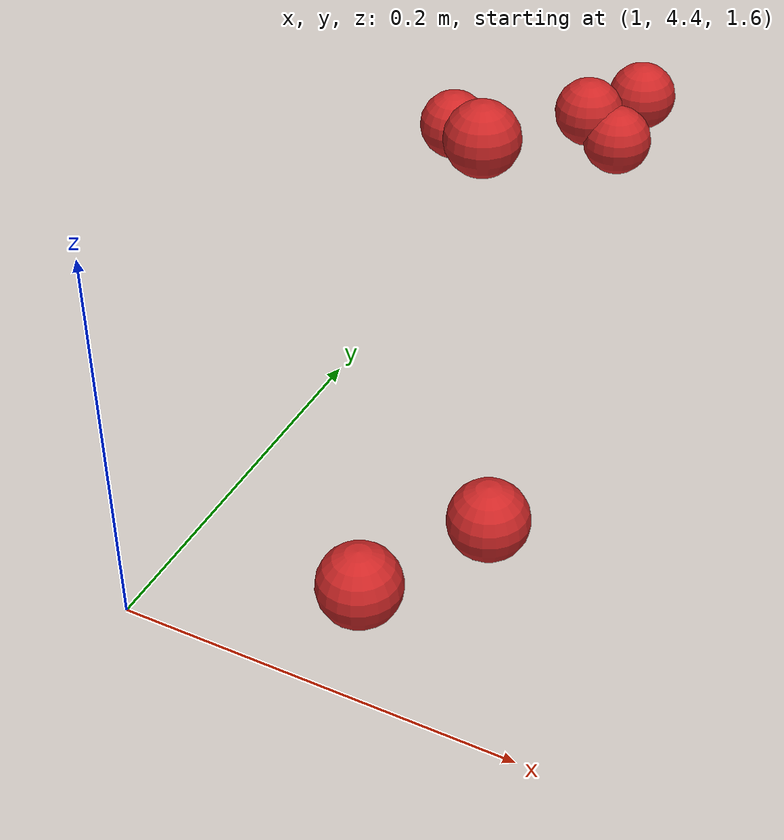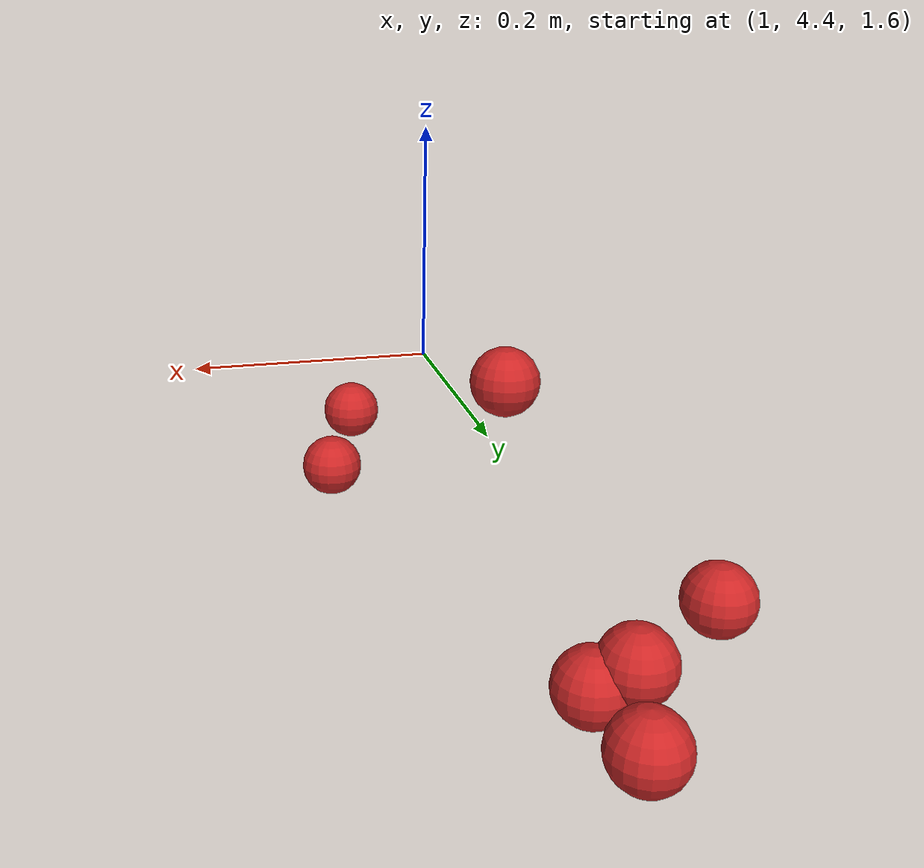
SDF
<sdf version="1.4">
 <model name="pergola">
  <link name="fruit_59">
   <pose>0.93965343294202 4.8539683423220845 1.5963617136771187 0 0 0</pose>
   <collision name="fruit_collision_59"><geometry><sphere><radius>0.022</radius></sphere></geometry></collision>
   <visual name="visual">
    <geometry><sphere><radius>0.022</radius></sphere></geometry>
    <material><script><name>Gazebo/Red</name></script></material>
   </visual>
   <inertial>
    <mass>0.05</mass>
    <inertia>
     <ixx>9.679999999999999e-06</ixx>
     <ixy>0.0</ixy>
     <ixz>0.0</ixz>
     <iyy>9.679999999999999e-06</iyy>
     <iyz>0.0</iyz>
     <izz>9.679999999999999e-06</izz>
    </inertia>
   </inertial>
   <sensor name="fruit_contact_59" type="contact">
    <plugin name="contact_plugin_59" filename="libcontact_plugin.so"/>
    <contact><collision>fruit_collision_59</collision><topic>fruit_contact_topic_59</topic></contact>
   </sensor>
  </link>
  <link name="fruit_111">
   <pose>1.0796516067157176 4.478020774260076 1.5828366507730647 0 0 0</pose>
   <collision name="fruit_collision_111"><geometry><sphere><radius>0.022</radius></sphere></geometry></collision>
   <visual name="visual">
    <geometry><sphere><radius>0.022</radius></sphere></geometry>
    <material><script><name>Gazebo/Red</name></script></material>
   </visual>
   <inertial>
    <mass>0.05</mass>
    <inertia>
     <ixx>9.679999999999999e-06</ixx>
     <ixy>0.0</ixy>
     <ixz>0.0</ixz>
     <iyy>9.679999999999999e-06</iyy>
     <iyz>0.0</iyz>
     <izz>9.679999999999999e-06</izz>
    </inertia>
   </inertial>
   <sensor name="fruit_contact_111" type="contact">
    <plugin name="contact_plugin_111" filename="libcontact_plugin.so"/>
    <contact><collision>fruit_collision_111</collision><topic>fruit_contact_topic_111</topic></contact>
   </sensor>
  </link>
  <link name="fruit_151">
   <pose>1.0250283172269645 4.720108020704341 1.6848999716293238 0 0 0</pose>
   <collision name="fruit_collision_151"><geometry><sphere><radius>0.022</radius></sphere></geometry></collision>
   <visual name="visual">
    <geometry><sphere><radius>0.022</radius></sphere></geometry>
    <material><script><name>Gazebo/Red</name></script></material>
   </visual>
   <inertial>
    <mass>0.05</mass>
    <inertia>
     <ixx>9.679999999999999e-06</ixx>
     <ixy>0.0</ixy>
     <ixz>0.0</ixz>
     <iyy>9.679999999999999e-06</iyy>
     <iyz>0.0</iyz>
     <izz>9.679999999999999e-06</izz>
    </inertia>
   </inertial>
   <sensor name="fruit_contact_151" type="contact">
    <plugin name="contact_plugin_151" filename="libcontact_plugin.so"/>
    <contact><collision>fruit_collision_151</collision><topic>fruit_contact_topic_151</topic></contact>
   </sensor>
  </link>
  <link name="fruit_197">
   <pose>1.0098710817007805 4.906567091879176 1.596323309345472 0 0 0</pose>
   <collision name="fruit_collision_197"><geometry><sphere><radius>0.022</radius></sphere></geometry></collision>
   <visual name="visual">
    <geometry><sphere><radius>0.022</radius></sphere></geometry>
    <material><script><name>Gazebo/Red</name></script></material>
   </visual>
   <inertial>
    <mass>0.05</mass>
    <inertia>
     <ixx>9.679999999999999e-06</ixx>
     <ixy>0.0</ixy>
     <ixz>0.0</ixz>
     <iyy>9.679999999999999e-06</iyy>
     <iyz>0.0</iyz>
     <izz>9.679999999999999e-06</izz>
    </inertia>
   </inertial>
   <sensor name="fruit_contact_197" type="contact">
    <plugin name="contact_plugin_197" filename="libcontact_plugin.so"/>
    <contact><collision>fruit_collision_197</collision><topic>fruit_contact_topic_197</topic></contact>
   </sensor>
  </link>
  <link name="fruit_257">
   <pose>1.0254536504731182 4.9589495920018365 1.5845947912404474 0 0 0</pose>
   <collision name="fruit_collision_257"><geometry><sphere><radius>0.022</radius></sphere></geometry></collision>
   <visual name="visual">
    <geometry><sphere><radius>0.022</radius></sphere></geometry>
    <material><script><name>Gazebo/Red</name></script></material>
   </visual>
   <inertial>
    <mass>0.05</mass>
    <inertia>
     <ixx>9.679999999999999e-06</ixx>
     <ixy>0.0</ixy>
     <ixz>0.0</ixz>
     <iyy>9.679999999999999e-06</iyy>
     <iyz>0.0</iyz>
     <izz>9.679999999999999e-06</izz>
    </inertia>
   </inertial>
   <sensor name="fruit_contact_257" type="contact">
    <plugin name="contact_plugin_257" filename="libcontact_plugin.so"/>
    <contact><collision>fruit_collision_257</collision><topic>fruit_contact_topic_257</topic></contact>
   </sensor>
  </link>
  <link name="fruit_274">
   <pose>1.1091113158218395 4.5596355147336425 1.5701085421959589 0 0 0</pose>
   <collision name="fruit_collision_274"><geometry><sphere><radius>0.022</radius></sphere></geometry></collision>
   <visual name="visual">
    <geometry><sphere><radius>0.022</radius></sphere></geometry>
    <material><script><name>Gazebo/Red</name></script></material>
   </visual>
   <inertial>
    <mass>0.05</mass>
    <inertia>
     <ixx>9.679999999999999e-06</ixx>
     <ixy>0.0</ixy>
     <ixz>0.0</ixz>
     <iyy>9.679999999999999e-06</iyy>
     <iyz>0.0</iyz>
     <izz>9.679999999999999e-06</izz>
    </inertia>
   </inertial>
   <sensor name="fruit_contact_274" type="contact">
    <plugin name="contact_plugin_274" filename="libcontact_plugin.so"/>
    <contact><collision>fruit_collision_274</collision><topic>fruit_contact_topic_274</topic></contact>
   </sensor>
  </link>
  <link name="fruit_411">
   <pose>1.0317557553682895 4.902332531750737 1.583746950516721 0 0 0</pose>
   <collision name="fruit_collision_411"><geometry><sphere><radius>0.022</radius></sphere></geometry></collision>
   <visual name="visual">
    <geometry><sphere><radius>0.022</radius></sphere></geometry>
    <material><script><name>Gazebo/Red</name></script></material>
   </visual>
   <inertial>
    <mass>0.05</mass>
    <inertia>
     <ixx>9.679999999999999e-06</ixx>
     <ixy>0.0</ixy>
     <ixz>0.0</ixz>
     <iyy>9.679999999999999e-06</iyy>
     <iyz>0.0</iyz>
     <izz>9.679999999999999e-06</izz>
    </inertia>
   </inertial>
   <sensor name="fruit_contact_411" type="contact">
    <plugin name="contact_plugin_411" filename="libcontact_plugin.so"/>
    <contact><collision>fruit_collision_411</collision><topic>fruit_contact_topic_411</topic></contact>
   </sensor>
  </link>
 </model>
</sdf>
